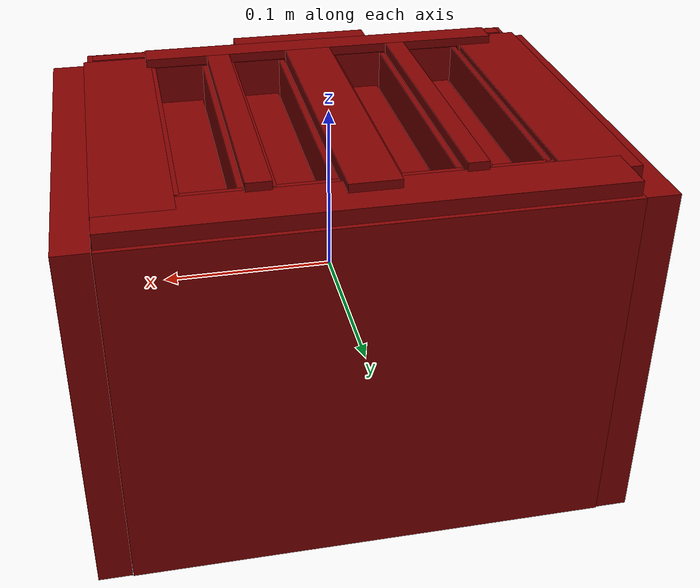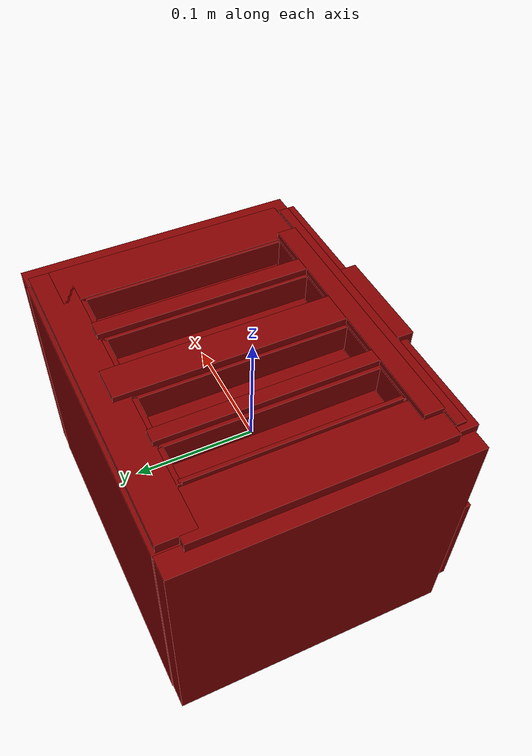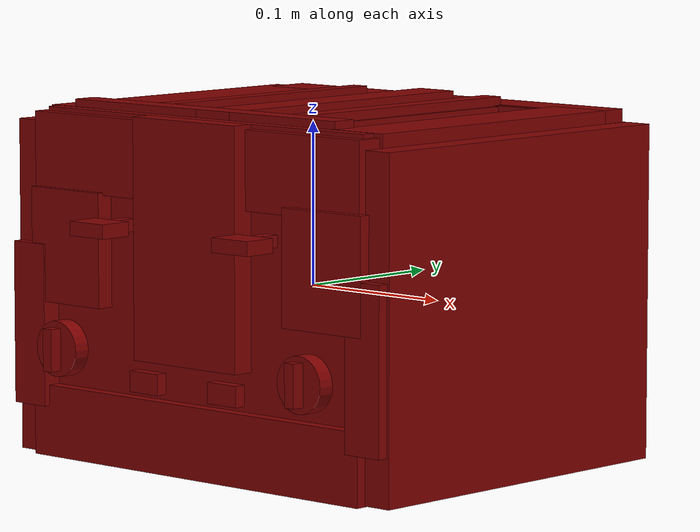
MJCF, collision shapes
<?xml version='1.0' encoding='UTF-8'?>
<mujoco model="model">
  <compiler angle="radian"/>
  <asset>
    <mesh file="visuals/Body001.obj" name="Body001_vis"/>
    <mesh file="visuals/Body002.obj" name="Body002_vis"/>
    <mesh file="visuals/Button001.obj" name="Button001_vis"/>
    <mesh file="visuals/Button002.obj" name="Button002_vis"/>
    <mesh file="visuals/Knob001.obj" name="Knob001_vis"/>
    <mesh file="visuals/Knob002.obj" name="Knob002_vis"/>
    <mesh file="visuals/Lever001.obj" name="Lever001_vis"/>
    <mesh file="visuals/Lever002.obj" name="Lever002_vis"/>
    <texture file="visuals/T_BC001.png" name="Body001_material" type="2d"/>
    <material name="Body001_material" rgba="1 1 1 1.0" texture="Body001_material" shininess="0.4472135901451111" specular="1"/>
    <texture file="visuals/T_BC001.png" name="Body002_material" type="2d"/>
    <material name="Body002_material" rgba="1 1 1 1.0" texture="Body002_material" shininess="0.4472135901451111" specular="8"/>
    <texture file="visuals/T_BC001.png" name="Button001_material" type="2d"/>
    <material name="Button001_material" rgba="1 1 1 1.0" texture="Button001_material" shininess="0.4472135901451111" specular="0.3103448502657381"/>
    <texture file="visuals/T_BC001.png" name="Button002_material" type="2d"/>
    <material name="Button002_material" rgba="1 1 1 1.0" texture="Button002_material" shininess="0.4472135901451111" specular="0.3103448502657381"/>
    <texture file="visuals/T_BC001.png" name="Knob001_material" type="2d"/>
    <material name="Knob001_material" rgba="1 1 1 1.0" texture="Knob001_material" shininess="0.4472135901451111" specular="0.3103448502657381"/>
    <texture file="visuals/T_BC001.png" name="Knob002_material" type="2d"/>
    <material name="Knob002_material" rgba="1 1 1 1.0" texture="Knob002_material" shininess="0.4472135901451111" specular="0.3103448502657381"/>
    <texture file="visuals/T_BC001.png" name="Lever001_material" type="2d"/>
    <material name="Lever001_material" rgba="1 1 1 1.0" texture="Lever001_material" shininess="0.4472135901451111" specular="0.3103448502657381"/>
    <texture file="visuals/T_BC001.png" name="Lever002_material" type="2d"/>
    <material name="Lever002_material" rgba="1 1 1 1.0" texture="Lever002_material" shininess="0.4472135901451111" specular="0.3103448502657381"/>
  </asset>
  <default>
    <default class="visual">
      <geom conaffinity="0" contype="0" group="1" type="mesh"/>
    </default>
    <default class="collision">
      <geom group="0" rgba="0.5 0 0 0.5"/>
    </default>
    <default class="spawn">
      <geom group="0" rgba="1 1 1 0.5" contype="0" conaffinity="0"/>
      <site group="0" rgba="1 1 1 0.5"/>
    </default>
    <default class="region">
      <geom group="1" conaffinity="0" contype="0" rgba="0 1 0 0"/>
    </default>
  </default>
  <worldbody>
    <body>
      <body name="object">
        <geom mesh="Body001_vis" type="mesh" solimp="0.998 0.998 0.001" solref="0.001 1" density="100" friction="0.95 0.3 0.1" class="visual" material="Body001_material"/>
        <geom class="collision" type="box" pos="-0.141243 0.015137 -0.002747" size="0.009178727865219116 0.11592275649309158 0.10164999961853027" quat="1.0 0.0 0.0 0.0"/>
        <geom class="collision" type="box" pos="0.144208 0.015137 -0.002747" size="0.009178727865219116 0.11592255532741547 0.10164978355169296" quat="1.0 0.0 0.0 0.0"/>
        <geom class="collision" type="box" pos="0.001229 0.122525 -0.002747" size="0.13334058225154877 0.009179549291729927 0.10164953768253326" quat="1.0 0.0 0.0 0.0"/>
        <geom class="collision" type="box" pos="-0.000339 -0.091372 0.021584" size="0.12924297153949738 0.004230947233736515 0.08551408350467682" quat="1.0 0.0 0.0 0.0"/>
        <geom class="collision" type="box" pos="-0.089622 -0.093570 0.080963" size="0.044729381799697876 0.009179295971989632 0.02361576445400715" quat="1.0 0.0 0.0 0.0"/>
        <geom class="collision" type="box" pos="0.087431 -0.093570 0.080963" size="0.044729381799697876 0.009179281070828438 0.02361571043729782" quat="1.0 0.0 0.0 0.0"/>
        <geom class="collision" type="box" pos="0.114583 0.013557 0.097837" size="0.019914431497454643 0.0990615263581276 0.009179212152957916" quat="1.0 0.0 0.0 0.0"/>
        <geom class="collision" type="box" pos="0.001826 0.114323 0.097837" size="0.13248924911022186 0.014557505026459694 0.009179200977087021" quat="1.0 0.0 0.0 0.0"/>
        <geom class="collision" type="box" pos="-0.117606 0.013557 0.097835" size="0.019914431497454643 0.09906122833490372 0.009179185144603252" quat="1.0 0.0 0.0 0.0"/>
        <geom class="collision" type="box" pos="-0.009776 -0.077569 0.101112" size="0.10709485411643982 0.007932464592158794 0.010621861554682255" quat="1.0 0.0 0.0 0.0"/>
        <geom class="collision" type="box" pos="0.015782 0.013705 0.089443" size="0.00161553209181875 0.08378555625677109 0.016658026725053787" quat="1.0 0.0 0.0 0.0"/>
        <geom class="collision" type="box" pos="0.046582 0.013705 0.083921" size="0.0015381376724690199 0.08378555625677109 0.02263912931084633" quat="1.0 0.0 0.0 0.0"/>
        <geom class="collision" type="box" pos="0.093524 0.013705 0.083921" size="0.0013486132957041264 0.08378555625677109 0.02263912931084633" quat="1.0 0.0 0.0 0.0"/>
        <geom class="collision" type="box" pos="0.062535 0.013705 0.089443" size="0.0016165731940418482 0.08378555625677109 0.016658026725053787" quat="1.0 0.0 0.0 0.0"/>
        <geom class="collision" type="box" pos="-0.047309 0.013705 0.089443" size="0.0015350093599408865 0.08378555625677109 0.016658026725053787" quat="1.0 0.0 0.0 0.0"/>
        <geom class="collision" type="box" pos="-0.016191 0.013705 0.083921" size="0.0013007379602640867 0.08378555625677109 0.02263912931084633" quat="1.0 0.0 0.0 0.0"/>
        <geom class="collision" type="box" pos="-0.062297 0.013705 0.083921" size="0.0015381374396383762 0.08378555625677109 0.02263912931084633" quat="1.0 0.0 0.0 0.0"/>
        <geom class="collision" type="box" pos="-0.093243 0.013705 0.083921" size="0.0014701661420986056 0.08378555625677109 0.02263912931084633" quat="1.0 0.0 0.0 0.0"/>
        <geom class="collision" type="box" pos="0.077512 -0.070857 0.083921" size="0.016096148639917374 0.0020216302946209908 0.022639114409685135" quat="1.0 0.0 0.0 0.0"/>
        <geom class="collision" type="box" pos="0.077512 0.098016 0.083921" size="0.016096148639917374 0.0020216312259435654 0.022639114409685135" quat="1.0 0.0 0.0 0.0"/>
        <geom class="collision" type="box" pos="0.030304 0.098016 0.083921" size="0.016096148639917374 0.0020216312259435654 0.022639114409685135" quat="1.0 0.0 0.0 0.0"/>
        <geom class="collision" type="box" pos="0.030304 -0.070857 0.083921" size="0.016096148639917374 0.0020216302946209908 0.022639114409685135" quat="1.0 0.0 0.0 0.0"/>
        <geom class="collision" type="box" pos="-0.032290 -0.070857 0.083921" size="0.016096148639917374 0.0020216302946209908 0.022639114409685135" quat="1.0 0.0 0.0 0.0"/>
        <geom class="collision" type="box" pos="-0.032290 0.098016 0.083921" size="0.016096148639917374 0.0020216312259435654 0.022639114409685135" quat="1.0 0.0 0.0 0.0"/>
        <geom class="collision" type="box" pos="-0.079545 0.098016 0.083921" size="0.016096148639917374 0.0020216312259435654 0.022639114409685135" quat="1.0 0.0 0.0 0.0"/>
        <geom class="collision" type="box" pos="-0.079545 -0.070857 0.083921" size="0.016096148639917374 0.0020216302946209908 0.022639114409685135" quat="1.0 0.0 0.0 0.0"/>
        <geom class="collision" type="box" pos="-0.105142 -0.097246 0.024176" size="0.029024213552474976 0.009178568609058857 0.03481302410364151" quat="1.0 0.0 0.0 0.0"/>
        <geom class="collision" type="box" pos="0.107101 -0.098656 0.027656" size="0.03062203899025917 0.009178582578897476 0.03481307998299599" quat="1.0 0.0 0.0 0.0"/>
        <geom class="collision" type="box" pos="0.138638 -0.098368 -0.025189" size="0.013080982491374016 0.009178738109767437 0.04972124844789505" quat="1.0 0.0 0.0 0.0"/>
        <geom class="collision" type="box" pos="-0.135888 -0.098368 -0.025189" size="0.013080982491374016 0.009178738109767437 0.04972124844789505" quat="1.0 0.0 0.0 0.0"/>
        <geom class="collision" type="box" pos="-0.001953 0.004581 -0.084017" size="0.13371647894382477 0.1082979217171669 0.02187611348927021" quat="1.0 0.0 0.0 0.0"/>
        <geom class="collision" type="box" pos="-0.055179 0.014778 0.101112" size="0.0056356037966907024 0.08718639612197876 0.010621508583426476" quat="1.0 0.0 0.0 0.0"/>
        <geom class="collision" type="box" pos="0.054441 0.014777 0.101112" size="0.006705792620778084 0.0871863067150116 0.010621494613587856" quat="1.0 0.0 0.0 0.0"/>
        <geom class="collision" type="box" pos="-0.000455 0.013557 0.101112" size="0.013624527491629124 0.09905863553285599 0.010621481575071812" quat="1.0 0.0 0.0 0.0"/>
        <geom class="collision" type="box" pos="-0.001456 -0.098238 0.034525" size="0.04177684336900711 0.011096636764705181 0.07257289439439774" quat="1.0 0.0 0.0 0.0"/>
        <body name="Body002">
          <geom mesh="Body002_vis" type="mesh" solimp="0.998 0.998 0.001" solref="0.001 1" density="100" friction="0.95 0.3 0.1" class="visual" material="Body002_material"/>
        </body>
        <body name="Button001">
          <joint axis="0.0 1.0 0.0" pos="-0.032588 -0.107852 -0.050198" limited="true" name="Button001_joint" range="0.0 0.002" type="slide" damping="1" frictionloss="1" armature=".01" stiffness="0.05"/>
          <geom mesh="Button001_vis" type="mesh" solimp="0.998 0.998 0.001" solref="0.001 1" density="100" friction="0.95 0.3 0.1" class="visual" material="Button001_material"/>
          <geom class="collision" type="box" pos="-0.032350 -0.108720 -0.050276" size="0.011667223647236824 0.0035695601254701614 0.006363078951835632" quat="1.0 0.0 0.0 0.0"/>
        </body>
        <body name="Button002">
          <joint axis="0.0 1.0 0.0" pos="0.032236 -0.107839 -0.050258" limited="true" name="Button002_joint" range="0.0 0.002" type="slide" damping="1" frictionloss="1" armature=".01" stiffness="0.05"/>
          <geom mesh="Button002_vis" type="mesh" solimp="0.998 0.998 0.001" solref="0.001 1" density="100" friction="0.95 0.3 0.1" class="visual" material="Button002_material"/>
          <geom class="collision" type="box" pos="0.032269 -0.108720 -0.050276" size="0.011667223647236824 0.0035695601254701614 0.006363078951835632" quat="1.0 0.0 0.0 0.0"/>
        </body>
        <body name="Knob001">
          <joint axis="0.0 1.0 0.0" pos="-0.100120 -0.116197 -0.036334" limited="true" name="Knob001_joint" range="0.0 5.515240436302081" type="hinge" damping="0.05" armature="0.001"/>
          <geom mesh="Knob001_vis" type="mesh" solimp="0.998 0.998 0.001" solref="0.001 1" density="100" friction="0.95 0.3 0.1" class="visual" material="Knob001_material"/>
          <geom class="collision" type="cylinder" pos="-0.100295 -0.113653 -0.036015" size="0.016932258382439613 0.005168990697711706" quat="0.7071068286895752 0.7071067690849304 0.0 0.0"/>
          <geom class="collision" type="box" pos="-0.100116 -0.122021 -0.036075" size="0.003514107782393694 0.004577383864670992 0.012959394603967667" quat="1.0 0.0 0.0 0.0"/>
        </body>
        <body name="Knob002">
          <joint axis="0.0 1.0 0.0" pos="0.100074 -0.116197 -0.036334" limited="true" name="Knob002_joint" range="0.0 5.515240436302081" type="hinge" damping="0.05" frictionloss="1" armature="0.001"/>
          <geom mesh="Knob002_vis" type="mesh" solimp="0.998 0.998 0.001" solref="0.001 1" density="100" friction="0.95 0.3 0.1" class="visual" material="Knob002_material"/>
          <geom class="collision" type="cylinder" pos="0.100121 -0.113653 -0.036477" size="0.016932258382439613 0.005168990697711706" quat="0.7071068286895752 0.7071067690849304 0.0 0.0" density="0.001"/>
          <geom class="collision" type="box" pos="0.099992 -0.122021 -0.036075" size="0.003514107782393694 0.004577383864670992 0.012959394603967667" quat="1.0 0.0 0.0 0.0" density="0.001"/>
        </body>
        <body name="Lever001">
          <joint axis="0.0 0.0 -1.0" pos="-0.059118 -0.120073 0.040844" limited="true" name="Lever001_joint" range="0.0 0.09" type="slide" damping="1" frictionloss="1" armature=".01" stiffness="2" springref="-0.7"/>
          <geom mesh="Lever001_vis" type="mesh" solimp="0.998 0.998 0.001" solref="0.001 1" density="100" friction="0.95 0.3 0.1" class="visual" material="Lever001_material"/>
          <geom class="collision" type="box" pos="-0.059123 -0.121953 0.040532" size="0.013939245603978634 0.010668216273188591 0.004320470150560141" quat="1.0 0.0 0.0 0.0" name="sideL_lever_knob"/>
          <geom class="collision" type="box" pos="-0.058954 -0.104821 0.040866" size="0.004207950551062822 0.007493324112147093 0.003815521253272891" quat="1.0 0.0 0.0 0.0"/>
          <geom class="collision" type="box" pos="-0.077545 0.013474 0.083334" size="0.012999956496059895 0.08046796917915344 0.0020216370467096567" quat="1.0 0.0 0.0 0.0" name="sideL_slotL_floor"/>
          <geom class="collision" type="box" pos="-0.031225 0.013474 0.083334" size="0.01299997977912426 0.08046787977218628 0.0020216370467096567" quat="1.0 0.0 0.0 0.0" name="sideL_slotR_floor"/>
        </body>
        <body name="Lever002">
          <joint axis="0.0 0.0 -1.0" pos="0.058741 -0.120073 0.040844" limited="true" name="Lever002_joint" range="0.0 0.09" type="slide" damping="1" frictionloss="1" armature=".01" stiffness="2" springref="-0.7"/>
          <geom mesh="Lever002_vis" type="mesh" solimp="0.998 0.998 0.001" solref="0.001 1" density="100" friction="0.95 0.3 0.1" class="visual" material="Lever002_material"/>
          <geom class="collision" type="box" pos="0.058864 -0.121953 0.040532" size="0.014113066717982292 0.010668198578059673 0.004320463165640831" quat="1.0 0.0 0.0 0.0" name="sideR_lever_knob"/>
          <geom class="collision" type="box" pos="0.058737 -0.104313 0.041059" size="0.004424079321324825 0.006900970358401537 0.0036738186608999968" quat="1.0 0.0 0.0 0.0"/>
          <geom class="collision" type="box" pos="0.031423 0.013474 0.083334" size="0.012999982573091984 0.08046790212392807 0.0020216370467096567" quat="1.0 0.0 0.0 0.0" name="sideR_slotL_floor"/>
          <geom class="collision" type="box" pos="0.078292 0.013271 0.083334" size="0.012999987229704857 0.07891448587179184 0.0020216370467096567" quat="1.0 0.0 0.0 0.0" name="sideR_slotR_floor"/>
        </body>
        <geom class="region" name="reg_main" type="box" pos="0.0 0.011632000000000003 0.0" size="0.154365 0.120755 0.110539"/>
      </body>
    </body>
  </worldbody>
  <actuator>
    <motor name="Button001_joint_actuator" joint="Button001_joint" gear="0.2"/>
    <motor name="Button002_joint_actuator" joint="Button002_joint" gear="0.2"/>
    <motor name="Knob001_joint_actuator" joint="Knob001_joint" gear="10"/>
    <motor name="Knob002_joint_actuator" joint="Knob002_joint" gear="10"/>
    <motor name="Lever001_joint_actuator" joint="Lever001_joint" gear="1.5"/>
    <motor name="Lever002_joint_actuator" joint="Lever002_joint" gear="1.5"/>
  </actuator>
</mujoco>
